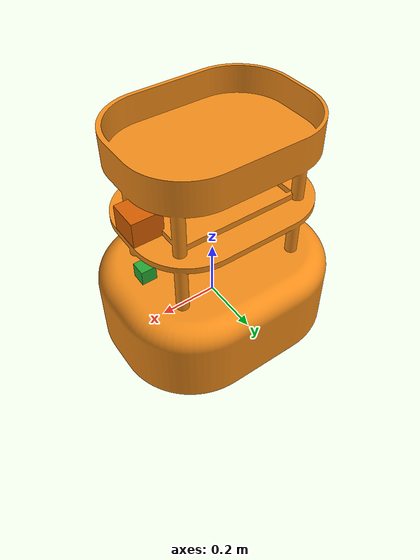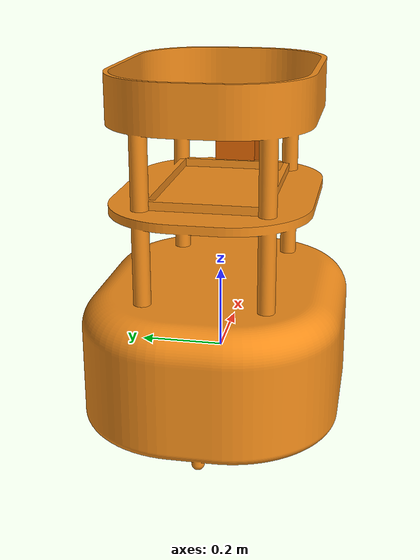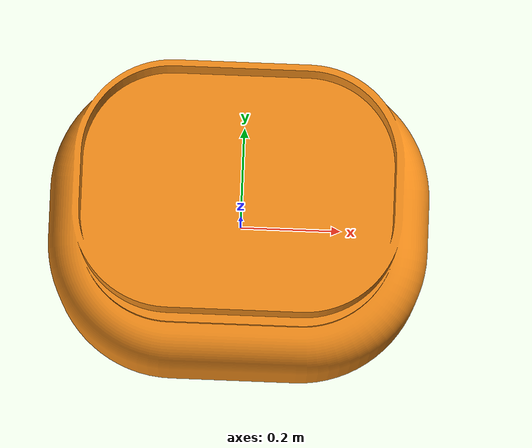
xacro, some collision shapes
<?xml version='1.0'?>

<robot name="myrobot" xmlns:xacro="http://www.ros.org/wiki/xacro">

  <xacro:property name="cameraSize" value="0.05"/>
  <xacro:property name="cameraMass" value="0.1"/>

  <xacro:include filename="$(find bookbot)/urdf/mybot.gazebo" />
  <xacro:include filename="$(find bookbot)/urdf/materials.xacro" />

  <!--Dummy base link-->
  <link name="chassis"></link>

  <joint name="base_link_to_base" type="fixed">
    <parent link="chassis"/>
    <child link="base_link" />
    <origin rpy="0.0 0 0" xyz="0 0 0"/>
  </joint>

  <!--Base Link-->
  <link name='base_link'>
    <inertial>
    <mass value="9.8129" />
    <origin xyz="-0.00636873 0.00030011 0.0767722" rpy="0 0 0"/>
    <inertia
      ixx="1.0087" ixy="-6.05459e-06" ixz="-0.0112309" iyy="11.3554" iyz="-0.000118317" izz="0.684012"/>
    </inertial>

    <collision name='collision'>
      <origin xyz="-0.00412574 0.000222774 -0.115845" rpy="-1.5708 6.7993e-17 1.5737e-17" />
      <geometry>
      <mesh filename="package://bookbot/meshes/base_1_supporto.stl" />

      </geometry>
      <surface>
        <friction>
        <ode>
          <mu>0</mu>
          <mu2>0</mu2>
          <slip1>1.0</slip1>
          <slip2>1.0</slip2>
        </ode>
        </friction>
      </surface>
    </collision>

    <visual name='base_link_visual'>
      <origin xyz="-0.00412574 0.000222774 -0.115845" rpy="-1.5708 6.7993e-17 1.5737e-17" />
      <geometry>
        <mesh filename="package://bookbot/meshes/base_1_supporto.stl" />
      </geometry>
    </visual>

  </link>
  <!--Left Standard Fixed Wheel-->
  <link name="left_wheel">
    <collision name="collision">
      <origin xyz="0 0 0.025" rpy="-3.14159 -0 0" />
      <geometry>
        <mesh filename="package://bookbot/meshes/wheel.stl" />
      </geometry>
    </collision>
    <visual name="left_wheel_visual">
      <origin xyz="0 0 0.025" rpy="-3.14159 -0 0" />
      <geometry>
      <mesh filename="package://bookbot/meshes/wheel.stl" />
      </geometry>
    </visual>
    <inertial>
      <origin xyz="-2.18305e-18 5.73556e-20 -3.46945e-18" rpy="0 0 0"/>
      <mass value="3.98738" />
      <inertia
        ixx="0.0106447" ixy="0"  ixz="0" iyy="0.0106447" iyz="3.93411e-35" izz="0.0197122"/>
    </inertial>
  </link>

  <joint type="continuous" name="left_wheel_hinge">
    <origin xyz="0.096678 0.204146 -0.0808453" rpy="-1.5708 1.5708 0" />
    <child link="left_wheel"/>
    <parent link="base_link"/>
    <axis xyz="0 0 1" rpy="0 0 0"/>
    <limit effort="10000" velocity="1000"/>
    <joint_properties damping="1.0" friction="1.0"/>
  </joint>

  <!--Right Standard Fixed Wheel-->
  <link name="right_wheel">
    <collision name="collision">
      <origin xyz="0 0 0.025" rpy="3.14159 -0 0" />
      <geometry>
        <mesh filename="package://bookbot/meshes/wheel.stl"/>
      </geometry>
    </collision>
    <visual name="right_wheel_visual">
      <origin xyz="0 0 0.025" rpy="3.14159 -0 0" />
      <geometry>
        <mesh filename="package://bookbot/meshes/wheel.stl"/>
      </geometry>
    </visual>
    <inertial>
      <origin xyz="-2.18305e-18 5.73556e-20 2.42861e-17" rpy="0 0 0"/>
      <mass value="3.98738" />
      <inertia
        ixx="0.0106447" ixy="0"  ixz="0" iyy="0.0106447" iyz="-7.11867e-35" izz="0.0197122"/>
    </inertial>
  </link>

  <joint type="continuous" name="right_wheel_hinge">

    <origin xyz="0.096678 -0.2037 -0.0808453" rpy="-1.5708 1.5708 0" />
    <child link="right_wheel"/>
    <parent link="base_link"/>
    <axis xyz="0 0 1" rpy="0 0 0"/>
    <limit effort="10000" velocity="1000"/>
    <joint_properties damping="1.0" friction="1.0"/>
  </joint>

  <!--Camera-->
  <link name="camera">
    <collision>
      <origin xyz="0 0 0" rpy="0 0 0"/>
      <geometry>
        <box size="${cameraSize} ${cameraSize} ${cameraSize}"/>
      </geometry>
    </collision>

    <visual>
      <origin xyz="0 0 0" rpy="0 0 0"/>
      <geometry>
        <box size="${cameraSize} ${cameraSize} ${cameraSize}"/>
      </geometry>
      <material name="green"/>
    </visual>

    <inertial>
      <mass value="${cameraMass}" />
      <origin xyz="0 0 0" rpy="0 0 0"/>
      <box_inertia m="${cameraMass}" x="${cameraSize}" y="${cameraSize}" z="${cameraSize}" />
      <inertia ixx="1e-6" ixy="0" ixz="0" iyy="1e-6" iyz="0" izz="1e-6" />
    </inertial>
  </link>

  <joint name="camera_joint" type="fixed">
    <axis xyz="0 1 0" />
    <origin xyz=".25 0 0.24" rpy="0 0 0"/>
    <parent link="chassis"/>
    <child link="camera"/>
  </joint>

  <joint name="hokuyo_joint" type="fixed">
    <axis xyz="0 1 0" />
    <origin xyz=".25 0 0.44" rpy="0 0 0"/>
    <parent link="base_link"/>
    <child link="hokuyo"/>
  </joint>

  <!-- Hokuyo Laser -->
  <link name="hokuyo">
    <collision>
      <origin xyz="0 0 0" rpy="0 0 0"/>
      <geometry>
        <box size="0.1 0.1 0.1"/>
      </geometry>
    </collision>

    <visual>
      <origin xyz="0 0 0" rpy="0 0 0"/>
      <geometry>
        <mesh filename="package://bookbot/meshes/hokuyo.dae"/>
      </geometry>
    </visual>

    <inertial>
      <mass value="1e-5" />
      <origin xyz="0 0 0" rpy="0 0 0"/>
      <inertia ixx="1e-6" ixy="0" ixz="0" iyy="1e-6" iyz="0" izz="1e-6" />
    </inertial>
  </link>

</robot>
